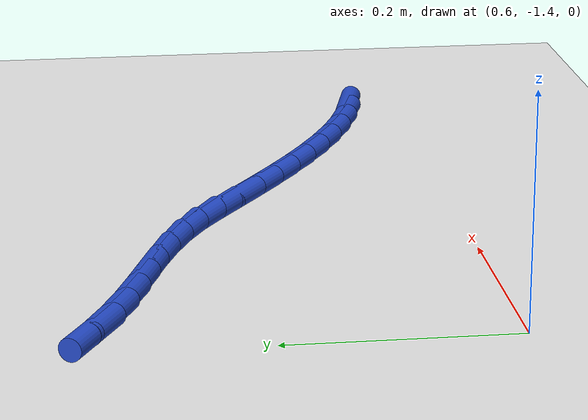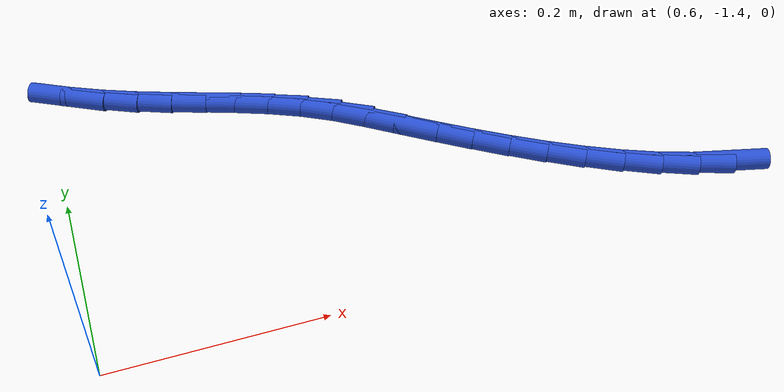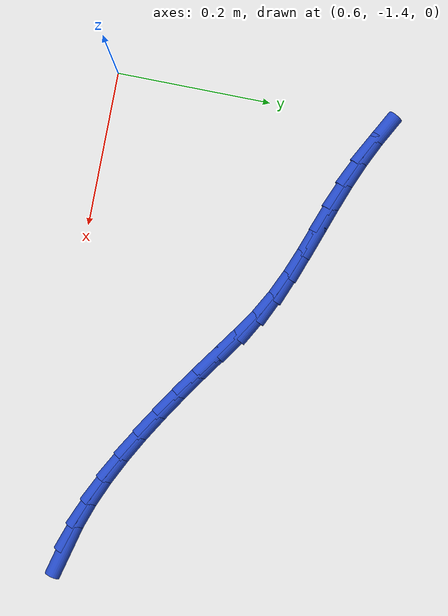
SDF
<sdf version="1.6">
 <world name="default">
  <model name="ground_plane">
   <static>1</static>
   <link name="link">
    <collision name="collision">
     <geometry><plane><normal>0 0 1</normal><size>100 100</size></plane></geometry>
     <surface><friction><ode><mu>100</mu><mu2>50</mu2></ode></friction></surface>
    </collision>
    <visual name="visual">
     <cast_shadows>0</cast_shadows>
     <geometry><plane><normal>0 0 1</normal><size>100 100</size></plane></geometry>
     <material>
      <script><uri>file://media/materials/scripts/gazebo.material</uri><name>Gazebo/WhiteGlow</name></script>
     </material>
    </visual>
   </link>
  </model>
  <model name="line">
   <link name="link_174">
    <pose>1.2131924726183878 -1.3470197782448818 0.01 0 1.57 -0.24557458134836235</pose>
    <collision name="collision">
     <geometry><cylinder><radius>0.01</radius><length>0.08</length></cylinder></geometry>
    </collision>
    <visual name="visual">
     <material>
      <script><name>Gazebo/Blue</name><uri>file://media/materials/scripts/gazebo.material</uri></script>
     </material>
     <geometry><cylinder><radius>0.01</radius><length>0.08</length></cylinder></geometry>
    </visual>
   </link>
   <link name="link_175">
    <pose>1.1809313980011935 -1.3389340800222294 0.01 0 1.57 -0.3310696004161214</pose>
    <collision name="collision">
     <geometry><cylinder><radius>0.01</radius><length>0.08</length></cylinder></geometry>
    </collision>
    <visual name="visual">
     <material>
      <script><name>Gazebo/Blue</name><uri>file://media/materials/scripts/gazebo.material</uri></script>
     </material>
     <geometry><cylinder><radius>0.01</radius><length>0.08</length></cylinder></geometry>
    </visual>
   </link>
   <link name="link_176">
    <pose>1.148571317418037 -1.3278112603278567 0.01 0 1.57 -0.4016933176739702</pose>
    <collision name="collision">
     <geometry><cylinder><radius>0.01</radius><length>0.08</length></cylinder></geometry>
    </collision>
    <visual name="visual">
     <material>
      <script><name>Gazebo/Blue</name><uri>file://media/materials/scripts/gazebo.material</uri></script>
     </material>
     <geometry><cylinder><radius>0.01</radius><length>0.08</length></cylinder></geometry>
    </visual>
   </link>
   <link name="link_177">
    <pose>1.1162422118175888 -1.3140781583577843 0.01 0 1.57 -0.4594725841112848</pose>
    <collision name="collision">
     <geometry><cylinder><radius>0.01</radius><length>0.08</length></cylinder></geometry>
    </collision>
    <visual name="visual">
     <material>
      <script><name>Gazebo/Blue</name><uri>file://media/materials/scripts/gazebo.material</uri></script>
     </material>
     <geometry><cylinder><radius>0.01</radius><length>0.08</length></cylinder></geometry>
    </visual>
   </link>
   <link name="link_178">
    <pose>1.0840740621485199 -1.2981616133080327 0.01 0 1.57 -0.5062251822026584</pose>
    <collision name="collision">
     <geometry><cylinder><radius>0.01</radius><length>0.08</length></cylinder></geometry>
    </collision>
    <visual name="visual">
     <material>
      <script><name>Gazebo/Blue</name><uri>file://media/materials/scripts/gazebo.material</uri></script>
     </material>
     <geometry><cylinder><radius>0.01</radius><length>0.08</length></cylinder></geometry>
    </visual>
   </link>
   <link name="link_179">
    <pose>1.0521968493595004 -1.2804884643746226 0.01 0 1.57 -0.5434326162372589</pose>
    <collision name="collision">
     <geometry><cylinder><radius>0.01</radius><length>0.08</length></cylinder></geometry>
    </collision>
    <visual name="visual">
     <material>
      <script><name>Gazebo/Blue</name><uri>file://media/materials/scripts/gazebo.material</uri></script>
     </material>
     <geometry><cylinder><radius>0.01</radius><length>0.08</length></cylinder></geometry>
    </visual>
   </link>
   <link name="link_180">
    <pose>1.0207405543992043 -1.2614855507535756 0.01 0 1.57 -0.5722089366977837</pose>
    <collision name="collision">
     <geometry><cylinder><radius>0.01</radius><length>0.08</length></cylinder></geometry>
    </collision>
    <visual name="visual">
     <material>
      <script><name>Gazebo/Blue</name><uri>file://media/materials/scripts/gazebo.material</uri></script>
     </material>
     <geometry><cylinder><radius>0.01</radius><length>0.08</length></cylinder></geometry>
    </visual>
   </link>
   <link name="link_181">
    <pose>0.9898351582163019 -1.2415797116409126 0.01 0 1.57 -0.5933035056046303</pose>
    <collision name="collision">
     <geometry><cylinder><radius>0.01</radius><length>0.08</length></cylinder></geometry>
    </collision>
    <visual name="visual">
     <material>
      <script><name>Gazebo/Blue</name><uri>file://media/materials/scripts/gazebo.material</uri></script>
     </material>
     <geometry><cylinder><radius>0.01</radius><length>0.08</length></cylinder></geometry>
    </visual>
   </link>
   <link name="link_182">
    <pose>0.9596106417594652 -1.221197786232655 0.01 0 1.57 -0.6071028574453916</pose>
    <collision name="collision">
     <geometry><cylinder><radius>0.01</radius><length>0.08</length></cylinder></geometry>
    </collision>
    <visual name="visual">
     <material>
      <script><name>Gazebo/Blue</name><uri>file://media/materials/scripts/gazebo.material</uri></script>
     </material>
     <geometry><cylinder><radius>0.01</radius><length>0.08</length></cylinder></geometry>
    </visual>
   </link>
   <link name="link_183">
    <pose>0.9301969859773647 -1.2007666137248225 0.01 0 1.57 -0.6129242138575297</pose>
    <collision name="collision">
     <geometry><cylinder><radius>0.01</radius><length>0.08</length></cylinder></geometry>
    </collision>
    <visual name="visual">
     <material>
      <script><name>Gazebo/Blue</name><uri>file://media/materials/scripts/gazebo.material</uri></script>
     </material>
     <geometry><cylinder><radius>0.01</radius><length>0.08</length></cylinder></geometry>
    </visual>
   </link>
   <link name="link_184">
    <pose>0.9017008102661648 -1.1807258105939225 0.01 0 1.57 -0.5871117303213517</pose>
    <collision name="collision">
     <geometry><cylinder><radius>0.01</radius><length>0.08</length></cylinder></geometry>
    </collision>
    <visual name="visual">
     <material>
      <script><name>Gazebo/Blue</name><uri>file://media/materials/scripts/gazebo.material</uri></script>
     </material>
     <geometry><cylinder><radius>0.01</radius><length>0.08</length></cylinder></geometry>
    </visual>
   </link>
   <link name="link_185">
    <pose>0.8734604280217141 -1.1619352077376626 0.01 0 1.57 -0.5073531724348749</pose>
    <collision name="collision">
     <geometry><cylinder><radius>0.01</radius><length>0.08</length></cylinder></geometry>
    </collision>
    <visual name="visual">
     <material>
      <script><name>Gazebo/Blue</name><uri>file://media/materials/scripts/gazebo.material</uri></script>
     </material>
     <geometry><cylinder><radius>0.01</radius><length>0.08</length></cylinder></geometry>
    </visual>
   </link>
   <link name="link_186">
    <pose>0.8440554272821266 -1.1455892950450401 0.01 0 1.57 -0.42697513294917006</pose>
    <collision name="collision">
     <geometry><cylinder><radius>0.01</radius><length>0.08</length></cylinder></geometry>
    </collision>
    <visual name="visual">
     <material>
      <script><name>Gazebo/Blue</name><uri>file://media/materials/scripts/gazebo.material</uri></script>
     </material>
     <geometry><cylinder><radius>0.01</radius><length>0.08</length></cylinder></geometry>
    </visual>
   </link>
   <link name="link_187">
    <pose>0.8132891062902518 -1.131591696212228 0.01 0 1.57 -0.37152410834046895</pose>
    <collision name="collision">
     <geometry><cylinder><radius>0.01</radius><length>0.08</length></cylinder></geometry>
    </collision>
    <visual name="visual">
     <material>
      <script><name>Gazebo/Blue</name><uri>file://media/materials/scripts/gazebo.material</uri></script>
     </material>
     <geometry><cylinder><radius>0.01</radius><length>0.08</length></cylinder></geometry>
    </visual>
   </link>
   <link name="link_188">
    <pose>0.7815611368399757 -1.119229921154912 0.01 0 1.57 -0.3405764241685338</pose>
    <collision name="collision">
     <geometry><cylinder><radius>0.01</radius><length>0.08</length></cylinder></geometry>
    </collision>
    <visual name="visual">
     <material>
      <script><name>Gazebo/Blue</name><uri>file://media/materials/scripts/gazebo.material</uri></script>
     </material>
     <geometry><cylinder><radius>0.01</radius><length>0.08</length></cylinder></geometry>
    </visual>
   </link>
   <link name="link_189">
    <pose>0.7492745416396035 -1.1077880179576023 0.01 0 1.57 -0.33346425856519646</pose>
    <collision name="collision">
     <geometry><cylinder><radius>0.01</radius><length>0.08</length></cylinder></geometry>
    </collision>
    <visual name="visual">
     <material>
      <script><name>Gazebo/Blue</name><uri>file://media/materials/scripts/gazebo.material</uri></script>
     </material>
     <geometry><cylinder><radius>0.01</radius><length>0.08</length></cylinder></geometry>
    </visual>
   </link>
   <link name="link_190">
    <pose>0.7168323433974382 -1.0965500347048114 0.01 0 1.57 -0.34994528154046933</pose>
    <collision name="collision">
     <geometry><cylinder><radius>0.01</radius><length>0.08</length></cylinder></geometry>
    </collision>
    <visual name="visual">
     <material>
      <script><name>Gazebo/Blue</name><uri>file://media/materials/scripts/gazebo.material</uri></script>
     </material>
     <geometry><cylinder><radius>0.01</radius><length>0.08</length></cylinder></geometry>
    </visual>
   </link>
   <link name="link_191">
    <pose>0.6846375648217842 -1.08480001948105 0.01 0 1.57 -0.3898609541776885</pose>
    <collision name="collision">
     <geometry><cylinder><radius>0.01</radius><length>0.08</length></cylinder></geometry>
    </collision>
    <visual name="visual">
     <material>
      <script><name>Gazebo/Blue</name><uri>file://media/materials/scripts/gazebo.material</uri></script>
     </material>
     <geometry><cylinder><radius>0.01</radius><length>0.08</length></cylinder></geometry>
    </visual>
   </link>
   <link name="link_192">
    <pose>0.653085953159287 -1.0718357025276404 0.01 0 1.57 -0.4416422413116896</pose>
    <collision name="collision">
     <geometry><cylinder><radius>0.01</radius><length>0.08</length></cylinder></geometry>
    </collision>
    <visual name="visual">
     <material>
      <script><name>Gazebo/Blue</name><uri>file://media/materials/scripts/gazebo.material</uri></script>
     </material>
     <geometry><cylinder><radius>0.01</radius><length>0.08</length></cylinder></geometry>
    </visual>
   </link>
   <link name="link_193">
    <pose>0.6223799836412083 -1.0573182794089966 0.01 0 1.57 -0.49223762187037173</pose>
    <collision name="collision">
     <geometry><cylinder><radius>0.01</radius><length>0.08</length></cylinder></geometry>
    </collision>
    <visual name="visual">
     <material>
      <script><name>Gazebo/Blue</name><uri>file://media/materials/scripts/gazebo.material</uri></script>
     </material>
     <geometry><cylinder><radius>0.01</radius><length>0.08</length></cylinder></geometry>
    </visual>
   </link>
  </model>
 </world>
</sdf>
